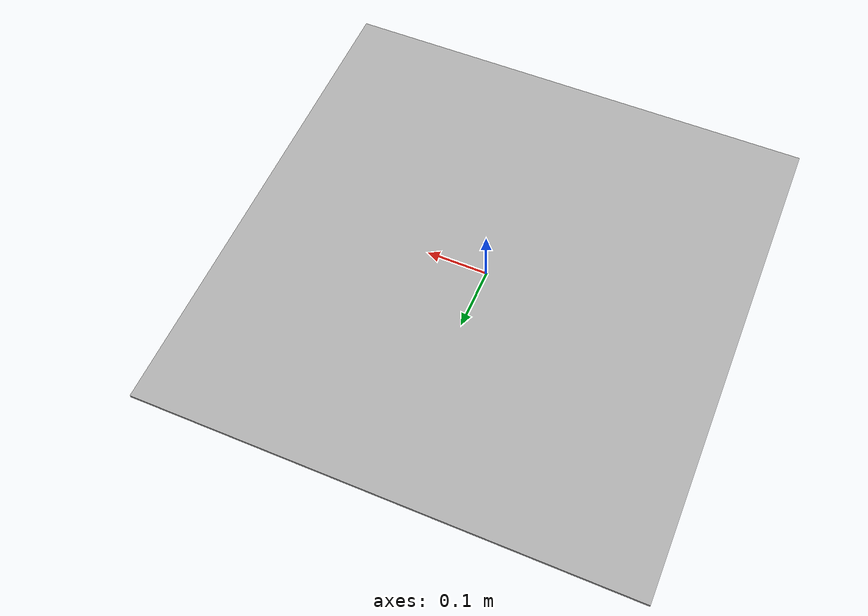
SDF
<?xml version="1.0"?>
<sdf version="1.6">
  <model name="landing_H">
    <pose>0 0 0.01 0 0 0</pose>
    <static>true</static>
    <link name="link">
      <inertial>
        <mass>0.5</mass>
        <inertia>
          <ixx>0.001</ixx>
          <ixy>0</ixy>
          <ixz>0</ixz>
          <iyy>0.001</iyy>
          <iyz>0</iyz>
          <izz>0.001</izz>
        </inertia>
      </inertial>
      <visual name="visual">
        <geometry>
          <box>
            <size>0.8 0.8 0.005</size>
          </box>
        </geometry>
        <material>
          <script>
            <uri>model://landing_H/materials/scripts</uri>
            <uri>model://landing_H/materials/textures</uri>
            <name>Cube/landing_H</name>
          </script>
        </material>
      </visual>
    </link>
  </model>
</sdf>
